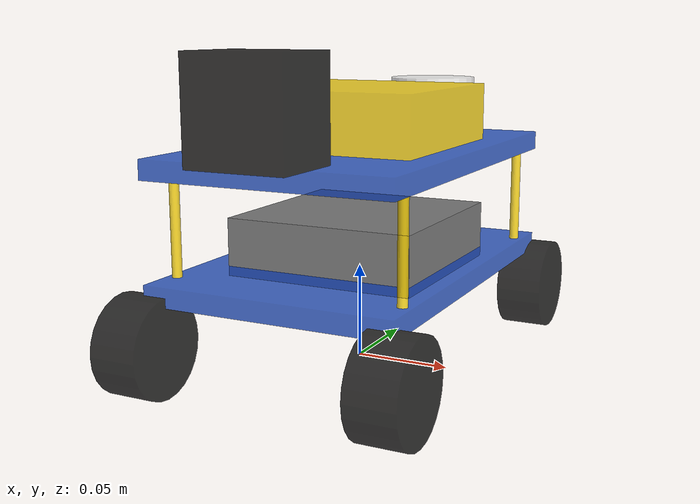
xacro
<?xml version="1.0"?>
<robot name="my_robot" xmlns:xacro="http://www.ros.org/xacro">

    <!-- 包含材料 + 底盘宏 +  轮子宏 -->
  <xacro:include filename="macros/materials_macro.xacro"/>
  <xacro:include filename="macros/base_macro.xacro"/>
  <xacro:include filename="macros/wheel_macro.xacro"/>
  <xacro:include filename="macros/board_macro.xacro"/>
  <xacro:include filename="macros/copper_pillar_macro.xacro"/>
  <xacro:include filename="macros/laser_sensor_macro.xacro"/>

    <!--
    调用底盘宏，填入你的尺寸：
    length=0.13   长13cm
    width=0.20    宽20cm
    height=0.01   高1cm
    z_off=0.05   离地5cm（底盘离地高度=底盘高度/2）
    mass=0.15     质量0.6kg
    material=Blue 蓝色
    -->
    <!-- 使用底盘宏，传入参数 -->
    <xacro:base_link_macro
        length="0.13"
        width="0.20"
        height="0.01"
        z_off="0.05"
        mass="0.6"
        material="Blue"
        prefix="base"/>

    <!-- 使用底盘宏，传入参数 -->
    <xacro:base_link_macro
        length="0.13"
        width="0.20"
        height="0.01"
        z_off="0.11"
        mass="0.15"
        material="Blue"
        prefix="top"/>

    <!-- 底盘和顶部通过固定关节连接 -->
    <xacro:base_joint_macro parent="base_link" xyz="0 0 0.0" prefix="top"/>

    <!-- 使用轮子宏，传入参数 -->
    <xacro:wheel_macro
      radius="0.025"
      length="0.025"

      mass="0.05"
      material="Black"
      prefix="lf"/>

    <xacro:wheel_macro
      radius="0.025"
      length="0.025"

      mass="0.05"
      material="Black"
      prefix="lb"/>

    <xacro:wheel_macro
      radius="0.025"
      length="0.025"

      mass="0.05"
      material="Black"
      prefix="rf"/>

    <xacro:wheel_macro
      radius="0.025"
      length="0.025"

      mass="0.05"
      material="Black"
      prefix="rb"/>

    <!-- 左前轮 -->
    <xacro:wheel_joint_macro prefix="lf" parent="base_link" xyz=" 0.065  0.10  0.025"/>
    <!-- 左后轮 -->
    <xacro:wheel_joint_macro prefix="lb" parent="base_link" xyz="-0.065  0.10  0.025 "/>
    <!-- 右前轮 -->
    <xacro:wheel_joint_macro prefix="rf" parent="base_link" xyz=" 0.065 -0.10  0.025"/>
    <!-- 右后轮 -->
    <xacro:wheel_joint_macro prefix="rb" parent="base_link" xyz="-0.065 -0.10  0.025"/>

    <!-- 使用STM32开发板宏，传入参数 -->
    <xacro:board_macro
        length="0.10"
        width="0.10"
        height="0.03"
        z_off="0.06"
        mass="0.2"
        material="Grey"
        prefix="stm32"/>

    <!-- STM32开发板安装在底盘上，使用固定关节 -->
    <xacro:board_joint_macro parent="base_link" xyz="0 0 0.005" prefix="stm32"/>

    <!-- 使用RDKX5开发板宏，传入参数 -->
    <xacro:board_macro
        length="0.10"
        width="0.10"
        height="0.03"
        z_off="0.13"
        mass="0.2"
        material="Gold"
        prefix="rdkx5"/>

    <!-- RDKX5开发板安装在底盘上，使用固定关节 -->
    <xacro:board_joint_macro parent="base_link" xyz="0 0 0" prefix="rdkx5"/>

    <!-- 使用Hikvision单目摄像头宏，传入参数 -->
    <xacro:board_macro
        length="0.05"
        width="0.04"
        height="0.05"
        z_off="0.14"
        mass="0.05"
        material="Black"
        prefix="hikvision"/>

    <!-- Hikvision单目摄像头安装在底盘上，使用固定关节 -->
    <xacro:board_joint_macro parent="base_link" xyz="0 -0.1 0" prefix="hikvision"/>

    <!-- 使用左前铜柱支撑宏，传入参数 -->
    <xacro:copper_pillar_macro
        radius="0.0025"
        height="0.05"
        z_off="0.025"
        mass="0.02"
        material="Gold"
        prefix="lf"/>

    <!-- 左前铜柱安装在底盘上，使用固定关节 -->
    <xacro:pillar_joint_macro parent="base_link" xyz="-0.06 0.08 0.055" prefix="lf"/>

    <!-- 使用右前铜柱支撑宏，传入参数 -->
    <xacro:copper_pillar_macro
        radius="0.0025"
        height="0.05"
        z_off="0.025"
        mass="0.02"
        material="Gold"
        prefix="rf"/>

    <!-- 右前铜柱安装在底盘上，使用固定关节 -->
    <xacro:pillar_joint_macro parent="base_link" xyz="0.06 0.08 0.055" prefix="rf"/>

    <!-- 使用左后铜柱支撑宏，传入参数 -->
    <xacro:copper_pillar_macro
        radius="0.0025"
        height="0.05"
        z_off="0.025"
        mass="0.02"
        material="Gold"
        prefix="lb"/>

    <!-- 左后铜柱安装在底盘上，使用固定关节 -->
    <xacro:pillar_joint_macro parent="base_link" xyz="-0.06 -0.08 0.055" prefix="lb"/>

    <!-- 使用右后铜柱支撑宏，传入参数 -->
    <xacro:copper_pillar_macro
        radius="0.0025"
        height="0.05"
        z_off="0.025"
        mass="0.02"
        material="Gold"
        prefix="rb"/>

    <!-- 右后铜柱安装在底盘上，使用固定关节 -->
    <xacro:pillar_joint_macro parent="base_link" xyz="0.06 -0.08 0.055" prefix="rb"/>

    <!-- 使用激光雷达传感器宏，传入参数 -->
    <xacro:laser_sensor_macro
        radius="0.025"
        height="0.03"
        z_off="0.13"
        mass="0.1"
        material="White"
        prefix="lidar"/>

    <!-- 激光雷达传感器安装在底盘上，使用固定关节 -->
    <xacro:laser_sensor_joint_macro parent="base_link" xyz="0 0.10 0" prefix="lidar"/>

</robot>

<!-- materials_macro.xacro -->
<robot xmlns:xacro="http://www.ros.org/wiki/xacro">

<!-- 白色 -->
  <material name="White">
    <color rgba="1.0 1.0 1.0 0.8"/>
  </material>

  <!-- 黑色 -->
  <material name="Black">
    <color rgba="0.0 0.0 0.0 0.8"/>
  </material>

  <!-- 红色 -->
  <material name="Red">
    <color rgba="1.0 0.0 0.0 0.8"/>
  </material>

  <!-- 蓝色 -->
  <material name="Blue">
    <color rgba="0.1 0.3 0.8 0.8"/>
  </material>

  <!-- 黄色 -->
  <material name="Yellow">
    <color rgba="1.0 1.0 0.0 0.8"/>
  </material>

  <!-- 绿色 -->
  <material name="Green">
    <color rgba="0.0 1.0 0.0 0.8"/>
  </material>

  <!-- 橙色 -->
  <material name="Orange">
    <color rgba="1.0 0.5 0.0 0.8"/>
  </material>

  <!-- 紫色 -->
  <material name="Purple">
    <color rgba="0.5 0.0 1.0 0.8"/>
  </material>

  <!-- 粉色 -->
  <material name="Pink">
    <color rgba="1.0 0.0 1.0 0.8"/>
  </material>

  <!-- 灰色 -->
  <material name="Grey">
    <color rgba="0.5 0.5 0.5 1.0"/>
  </material>

  <!-- 金色 -->
  <material name="Gold">
    <color rgba="1.0 0.84 0.0 0.8"/>
  </material>

</robot>

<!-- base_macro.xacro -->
<robot xmlns:xacro="http://www.ros.org/wiki/xacro">

    <xacro:macro name="base_link_macro" params="length width height z_off mass material prefix">

        <link name="${prefix}_link">
            <!-- 可视化 -->
            <visual>
                <origin xyz="0 0 ${z_off}" rpy="0 0 0"/>
                <geometry>
                <box size="${length} ${width} ${height}"/>
                </geometry>
                <material name="${material}"/>
            </visual>

             <!-- 碰撞：仿真必须有，和可视化尺寸一样 -->
            <collision>
                <origin xyz="0 0 ${z_off}" rpy="0 0 0"/>
                <geometry>
                <box size="${length} ${width} ${height}"/>
                </geometry>
            </collision>

            <!-- 惯性：仿真物理特性 -->
            <inertial>
                <mass value="${mass}"/>  <!-- 底盘重量由mass写入参数决定 -->
                <origin xyz="0 0 ${z_off}"/>
                <inertia

                    ixx="${(mass/12)*(width*width + height*height)}"
                    ixy="0.0"
                    ixz="0.0"
                    iyy="${(mass/12)*(length*length + height*height)}"
                    iyz="0.0"
                    izz="${(mass/12)*(length*length + width*width)}"
                /><!-- 长方体转动惯量计算公式 -->
            </inertial>
        </link>
    </xacro:macro>

    <xacro:macro name="base_joint_macro" params="parent xyz prefix">
    <joint name="base_to_${prefix}_joint" type="fixed">
        <parent link="${parent}" />
        <child link="${prefix}_link" />
        <origin xyz="${xyz}" rpy="0 0 0" />
    </joint>
    </xacro:macro>

</robot>

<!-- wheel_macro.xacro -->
<robot xmlns:xacro="http://www.ros.org/wiki/xacro">
    <!--
        轮子宏定义（圆柱体）
        参数说明：
        radius  : 轮子半径 (m)
        length  : 轮子厚度 (m)
        mass    : 轮子质量 (kg)
        material: 颜色
        prefix  : 轮子名称前缀（用于区分左前/左后/右前/右后）
    -->

    <!-- 1. 轮子link宏（定义轮子的可视化、碰撞、惯性） -->
    <xacro:macro name="wheel_macro" params="radius length mass material prefix">
        <link name="${prefix}_wheel">
            <!-- 可视化：圆柱默认轴线朝Z，绕Y轴旋转90度使轴朝X方向（轮子滚动方向） -->
            <visual>
                <origin xyz="0 0 0" rpy="0 1.5708 0"/>
                <geometry>
                    <cylinder radius="${radius}" length="${length}"/>
                </geometry>
                <material name="${material}"/>
            </visual>

            <!-- 碰撞 -->
            <collision>
                <origin xyz="0 0 0" rpy="0 1.5708 0"/>
                <geometry>
                    <cylinder radius="${radius}" length="${length}"/>
                </geometry>
            </collision>

            <!-- 惯性 -->
            <inertial>
                <mass value="${mass}"/>
                <origin xyz="0 0 0"/>
                <inertia
                    ixx="${(1/12)*mass*(3*radius*radius + length*length)}"
                    ixy="0.0"
                    ixz="0.0"
                    iyy="${(1/2)*mass*radius*radius}"
                    iyz="0.0"
                    izz="${(1/12)*mass*(3*radius*radius + length*length)}"
                />
            </inertial>
        </link>
    </xacro:macro>

    <!-- 2. 轮子joint宏（定义轮子和底盘的关节） -->
    <xacro:macro name="wheel_joint_macro" params="prefix parent xyz">
        <joint name="${prefix}_wheel_joint" type="continuous">
            <parent link="${parent}" />
            <child link="${prefix}_wheel" />
            <!-- 位置由xyz决定，rpy将圆柱Z轴转至X轴方向使其绕X轴旋转 -->
            <origin xyz="${xyz}" rpy="1.5708 0 0"/>
            <axis xyz="1 0 0" />
        </joint>
    </xacro:macro>

</robot>

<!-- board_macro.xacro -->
<robot xmlns:xacro="http://www.ros.org/wiki/xacro">

    <xacro:macro name="board_macro" params="length width height z_off mass material prefix">

        <link name="board_${prefix}">
            <!-- 可视化 -->
            <visual>
                <origin xyz="0 0 ${z_off}" rpy="0 0 0"/>
                <geometry>
                <box size="${length} ${width} ${height}"/>
                </geometry>
                <material name="${material}"/>
            </visual>

             <!-- 碰撞：仿真必须有，和可视化尺寸一样 -->
            <collision>
                <origin xyz="0 0 ${z_off}" rpy="0 0 0"/>
                <geometry>
                <box size="${length} ${width} ${height}"/>
                </geometry>
            </collision>

            <!-- 惯性：仿真物理特性 -->
            <inertial>
                <mass value="${mass}"/>
                <origin xyz="0 0 ${z_off}"/>
                <inertia

                    ixx="${(mass/12)*(width*width + height*height)}"
                    ixy="0.0"
                    ixz="0.0"
                    iyy="${(mass/12)*(length*length + height*height)}"
                    iyz="0.0"
                    izz="${(mass/12)*(length*length + width*width)}"
                /><!-- 长方体转动惯量计算公式 -->
            </inertial>
        </link>
    </xacro:macro>

     <!-- 板关节宏定义：支持prefix、自定义父连杆和位置 -->
    <xacro:macro name="board_joint_macro" params="parent xyz prefix">
    <joint name="base_to_${prefix}_joint" type="fixed">
        <parent link="${parent}" />
        <child link="board_${prefix}" />
        <origin xyz="${xyz}" rpy="0 0 0" />
    </joint>
    </xacro:macro>

</robot>

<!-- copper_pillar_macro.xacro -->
<robot xmlns:xacro="http://www.ros.org/wiki/xacro">

    <xacro:macro name="copper_pillar_macro" params="radius height  z_off mass material prefix">

        <link name="${prefix}_copper_pillar">
            <!-- 可视化 -->
            <visual>
                <origin xyz="0 0 ${z_off}" rpy="0 0 0"/>
                <geometry>
                    <cylinder radius="${radius}" length="${height}"/>
                </geometry>
                <material name="${material}"/>
            </visual>

            <!-- 碰撞：仿真必须有，和可视化尺寸一样 -->
            <collision>
                <origin xyz="0 0 ${z_off}" rpy="0 0 0"/>
                <geometry>
                    <cylinder radius="${radius}" length="${height}"/>
                </geometry>
            </collision>

            <!-- 惯性：仿真物理特性 -->
            <inertial>
                <mass value="${mass}"/>
                <origin xyz="0 0 ${z_off}"/>
                <inertia
                    ixx="${mass * (radius*radius/4 + height*height/12)}"
                    ixy="0.0"
                    ixz="0.0"
                    iyy="${mass * (radius*radius/4 + height*height/12)}"
                    iyz="0.0"
                    izz="${mass * radius*radius/2}"
                /><!-- 圆柱体转动惯量计算公式 -->
            </inertial>
        </link>
    </xacro:macro>

    <!-- 铜柱关节宏定义：支持父连杆和位置 -->
    <xacro:macro name="pillar_joint_macro" params="parent xyz prefix">
    <joint name="${prefix}_base_to_pillar_joint" type="fixed">
        <parent link="${parent}" />
        <child link="${prefix}_copper_pillar" />
        <origin xyz="${xyz}" rpy="0 0 0" />
    </joint>
    </xacro:macro>

</robot>

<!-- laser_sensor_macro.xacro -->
<robot xmlns:xacro="http://www.ros.org/wiki/xacro">

    <xacro:macro name="laser_sensor_macro" params="radius height z_off mass material prefix">
        <link name="${prefix}_laser_sensor">
            <!-- 可视化 -->
            <visual>
                <origin xyz="0 0 ${z_off}" rpy="0 0 0"/>
                <geometry>
                    <cylinder radius="${radius}" length="${height}"/>
                </geometry>
                <material name="${material}"/>
            </visual>

            <!-- 碰撞：仿真必须有，和可视化尺寸一样 -->
            <collision>
                <origin xyz="0 0 ${z_off}" rpy="0 0 0"/>
                <geometry>
                    <cylinder radius="${radius}" length="${height}"/>
                </geometry>
            </collision>

            <!-- 惯性：仿真物理特性 -->
            <inertial>
                <mass value="${mass}"/>
                <origin xyz="0 0 ${z_off}"/>
                <inertia
                    ixx="${(1/12)*mass*(3*radius*radius + height*height)}"
                    ixy="0.0"
                    ixz="0.0"
                    iyy="${(1/2)*mass*radius*radius}"
                    iyz="0.0"
                    izz="${(1/12)*mass*(3*radius*radius + height*height)}"
                />
            </inertial>
        </link>
    </xacro:macro>

    <!-- 传感器关节宏定义：支持prefix、自定义父连杆和位置 -->
    <xacro:macro name="laser_sensor_joint_macro" params="parent xyz prefix">
    <joint name="${prefix}_laser_sensor_joint" type="fixed">
        <parent link="${parent}" />
        <child link="${prefix}_laser_sensor" />
        <origin xyz="${xyz}" rpy="0 0 0" />
    </joint>
    </xacro:macro>
</robot>
